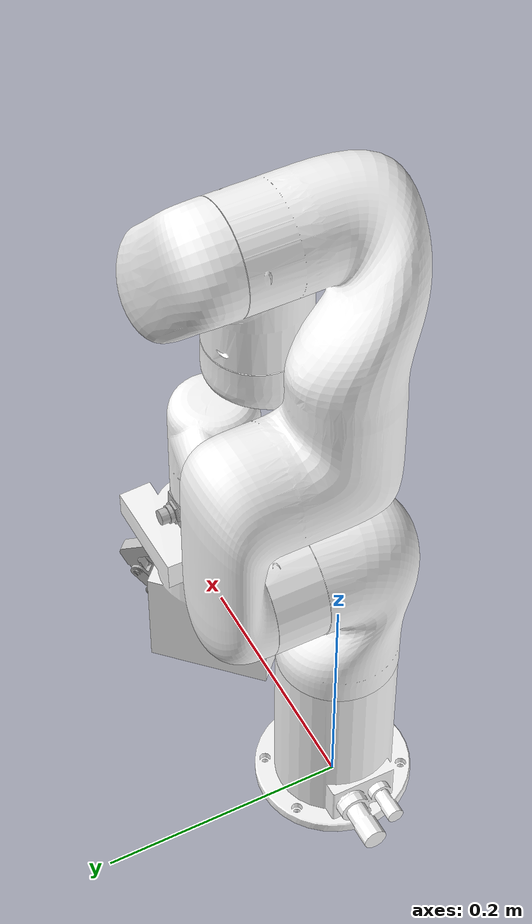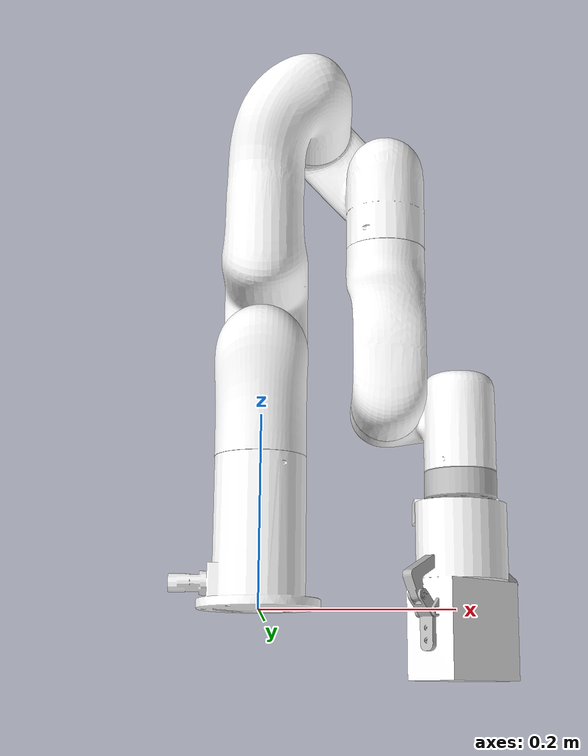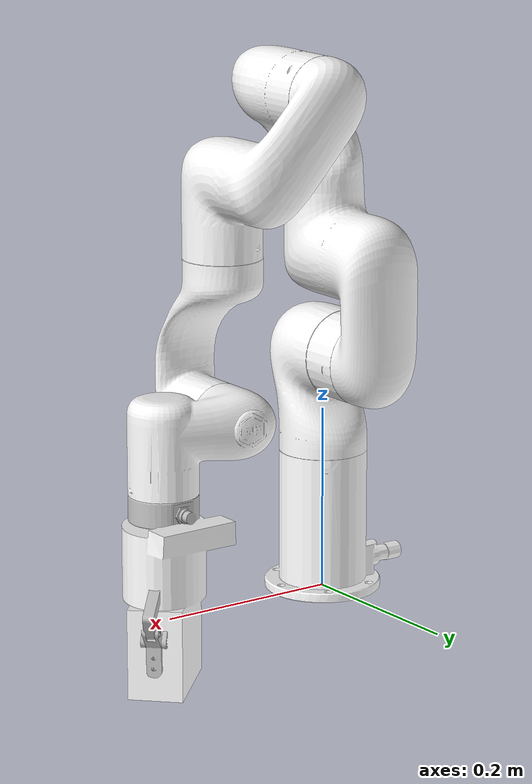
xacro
<?xml version='1.0' encoding='utf-8'?>
<robot xmlns:xacro="http://ros.org/wiki/xacro" name="xarm6">
  <xacro:arg name="prefix" default=""/>
  <xacro:arg name="ros_namespace" default="xarm"/>
  <xacro:arg name="limited" default="false"/>
  <xacro:arg name="effort_control" default="false"/>
  <xacro:arg name="velocity_control" default="false"/>
  <!-- To add realsense d435i and gripper, set 'add_realsense_d435i' = true -->
  <xacro:arg name="add_realsense_d435i" default="false"/>
  <xacro:arg name="use_gazebo_camera" default="false"/>
  <xacro:arg name="xyz" default="0 0 0"/>
  <xacro:arg name="rpy" default="0 0 0"/>

  <!-- load xarm6 robot -->
  <xacro:include filename="$(find xarm_description)/urdf/xarm6_robot_macro.xacro" />

  <!-- Attach gripper -->
  <xacro:include filename="$(find xarm_gripper)/urdf/xarm_gripper_model.xacro" />

  <xacro:xarm6_robot prefix="$(arg prefix)" namespace="$(arg ros_namespace)" limited="$(arg limited)" effort_control="$(arg effort_control)" velocity_control="$(arg velocity_control)" rs_d435i="$(arg add_realsense_d435i)" xyz="$(arg xyz)" rpy="$(arg rpy)" />

  <xacro:if value="$(arg add_realsense_d435i)">
    <xacro:load_gripper attach_to="$(arg prefix)link_eef" xyz="0 0 0.003" effort_control="$(arg effort_control)" velocity_control="$(arg velocity_control)" robot_dof="6" />
  </xacro:if>
  <xacro:unless value="$(arg add_realsense_d435i)">
    <xacro:load_gripper attach_to="$(arg prefix)link_eef" effort_control="$(arg effort_control)" velocity_control="$(arg velocity_control)" robot_dof="6" />
  </xacro:unless>

  <xacro:if value="$(arg use_gazebo_camera)">
    <xacro:include filename="$(find xarm_description)/urdf/camera.gazebo.xacro" />
    <xacro:camera_gazebo prefix="$(arg prefix)" />
  </xacro:if>
</robot>

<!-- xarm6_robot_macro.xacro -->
<robot xmlns:xacro="http://ros.org/wiki/xacro" name="xarm6" >
  <xacro:macro name="xarm6_robot" params="prefix:='' namespace:='xarm' limited:='false' effort_control:='false'
    velocity_control:='false' attach_to:='world' xyz:='0 0 0' rpy:='0 0 0' load_gazebo_plugin:='true' rs_d435i:='false'
    add_other_geometry:='false'
    geometry_type:='box' geometry_mass:='0.1'
    geometry_radius:='0.1' geometry_height:='0.1'
    geometry_length:='0.1' geometry_width:='0.1'
    geometry_mesh_filename:=''
    geometry_mesh_origin_xyz:='0 0 0'
    geometry_mesh_origin_rpy:='0 0 0'
    geometry_mesh_tcp_xyz:='0 0 0'
    geometry_mesh_tcp_rpy:='0 0 0' ">

    <!-- include xarm6 relative macros: -->
    <xacro:include filename="$(find xarm_description)/urdf/xarm6.urdf.xacro" />
    <xacro:include filename="$(find xarm_description)/urdf/xarm6.transmission.xacro" />
    <xacro:include filename="$(find xarm_description)/urdf/xarm6.gazebo.xacro" />

    <!-- gazebo_plugin -->
    <xacro:if value="${load_gazebo_plugin}">
    <xacro:include filename="$(find xarm_description)/urdf/common.gazebo.xacro" />
    <xacro:gazebo_ros_control_plugin namespace="${namespace}"/>
    </xacro:if>

    <!-- add one world link if no 'attach_to' specified  -->
    <xacro:if value="${attach_to == 'world'}">
      <link name="world" />
    </xacro:if>

    <joint name="${prefix}world_joint" type="fixed">
      <parent link="${attach_to}" />
      <child link = "${prefix}link_base" />
      <origin xyz="${xyz}" rpy="${rpy}" />
    </joint>

<!-- joint4 limit changed from -180-180 to 0-360 -->
<!-- joint5 limit change from -180-180 to -360-360 -->
    <xacro:if value="${limited}">
      <xacro:xarm6_urdf prefix="${prefix}"
        joint1_lower_limit="${-2.0*pi}" joint1_upper_limit="${2.0*pi}"
        joint2_lower_limit="${-2.059}" joint2_upper_limit="${2.0944}"
        joint3_lower_limit="${-3.927}" joint3_upper_limit="${0.19198}"
        joint4_lower_limit="${-2.0*pi}" joint4_upper_limit="${2.0*pi}"
        joint5_lower_limit="${-1.69297}" joint5_upper_limit="${pi*0.99}"
        joint6_lower_limit="${-2.0*pi}" joint6_upper_limit="${2.0*pi}"
        rs_d435i="${rs_d435i}"/>
    </xacro:if>
    <xacro:unless value="${limited}">
      <xacro:xarm6_urdf prefix="${prefix}" rs_d435i="${rs_d435i}"/>
    </xacro:unless>

    <xacro:xarm6_transmission prefix="${prefix}" hard_interface="$(eval 'EffortJointInterface' if ${effort_control} else 'VelocityJointInterface' if ${velocity_control} else 'PositionJointInterface')" />

    <xacro:xarm6_gazebo prefix="${prefix}" />

    <xacro:if value="${add_other_geometry}">
      <xacro:include filename="$(find xarm_description)/urdf/other_geometry.urdf.xacro" />
      <xacro:other_geometry prefix="${prefix}" attach_to="${prefix}link_eef"
        geometry_type="${geometry_type}" geometry_mass="${geometry_mass}"
        geometry_height="${geometry_height}" geometry_radius="${geometry_radius}"
        geometry_length="${geometry_length}" geometry_width="${geometry_width}"
        geometry_mesh_filename="${geometry_mesh_filename}"
        geometry_mesh_origin_xyz="${geometry_mesh_origin_xyz}" geometry_mesh_origin_rpy="${geometry_mesh_origin_rpy}"
        geometry_mesh_tcp_xyz="${geometry_mesh_tcp_xyz}" geometry_mesh_tcp_rpy="${geometry_mesh_tcp_rpy}"
      />
    </xacro:if>

  </xacro:macro>

</robot>

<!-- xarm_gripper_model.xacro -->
<robot xmlns:xacro="http://ros.org/wiki/xacro"
       name="xarm_gripper">
    <!-- common stuff -->
    <xacro:include filename="$(find xarm_description)/urdf/common.gazebo.xacro"/>

    <!-- xarm_gripper -->
    <xacro:include filename="$(find xarm_gripper)/urdf/xarm_gripper.urdf.xacro"/>
    <xacro:include filename="$(find xarm_gripper)/urdf/xarm_gripper.transmission.xacro"/>
    <xacro:include filename="$(find xarm_gripper)/urdf/xarm_gripper.gazebo.xacro"/>

    <xacro:macro name="load_gripper"
                 params="prefix:='' attach_to:='' ns:='xarm' effort_control:='false'
                 velocity_control:='false' robot_dof:=7 gripper_meshes_path:='' long_finger:='false'
                 upside_down:='false' tool_changer:='false'">
        <!-- gazebo plugin -->

        <xacro:xarm_gripper_urdf prefix="${prefix}" attach_to="${attach_to}" upside_down="${upside_down}"
                                 long_finger="${long_finger}" gripper_meshes_path="${gripper_meshes_path}"
                                 tool_changer="${tool_changer}"/>

        <xacro:xarm_gripper_transmission prefix="${prefix}"
                                         hard_interface="$(eval 'EffortJointInterface' if ${effort_control} else 'VelocityJointInterface' if ${velocity_control} else 'PositionJointInterface')"/>

        <xacro:xarm_gripper_gazebo prefix="${prefix}"/>
        <xacro:xarm_gazebo_grasp_fix prefix="${prefix}" palm_link="${prefix}link${robot_dof}"/>

        <!-- mimic_joint_plugin has to be installed: -->
        <xacro:mimic_joint_plugin_gazebo name_prefix="${prefix}left_finger_joint"
                                         following_joint="${prefix}drive_joint" mimic_joint="${prefix}left_finger_joint"
                                         has_pid="false" multiplier="1.0" max_effort="10.0"/>

        <xacro:mimic_joint_plugin_gazebo name_prefix="${prefix}left_inner_knuckle_joint"
                                         following_joint="${prefix}drive_joint"
                                         mimic_joint="${prefix}left_inner_knuckle_joint"
                                         has_pid="false" multiplier="1.0" max_effort="10.0"/>

        <xacro:mimic_joint_plugin_gazebo name_prefix="${prefix}right_outer_knuckle_joint"
                                         following_joint="${prefix}drive_joint"
                                         mimic_joint="${prefix}right_outer_knuckle_joint"
                                         has_pid="false" multiplier="1.0" max_effort="10.0"/>

        <xacro:mimic_joint_plugin_gazebo name_prefix="${prefix}right_finger_joint"
                                         following_joint="${prefix}drive_joint"
                                         mimic_joint="${prefix}right_finger_joint"
                                         has_pid="false" multiplier="1.0" max_effort="10.0"/>

        <xacro:mimic_joint_plugin_gazebo name_prefix="${prefix}right_inner_knuckle_joint"
                                         following_joint="${prefix}drive_joint"
                                         mimic_joint="${prefix}right_inner_knuckle_joint"
                                         has_pid="false" multiplier="1.0" max_effort="10.0"/>

    </xacro:macro>
</robot>

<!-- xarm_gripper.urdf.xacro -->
<robot xmlns:xacro="http://ros.org/wiki/xacro" name="xarm_gripper">
    <xacro:macro name="xarm_gripper_urdf"
                 params="prefix:='' attach_to:='' gripper_meshes_path:='' long_finger:='false' upside_down:='false'
                        tool_changer:='false'">
        <xacro:if value="${long_finger}">
            <xacro:property name="gripper_meshes_path"
                            value="xarm_gripper/meshes/xarm_long_finger_assembled"/>
            <xacro:property name="tcp_offset_z" value="0.340"/>
        </xacro:if>
        <xacro:unless value="${long_finger}">
            <xacro:property name="tcp_offset_z" value="0.172"/>
        </xacro:unless>
        <xacro:if value="${gripper_meshes_path == ''}">
            <xacro:property name="gripper_meshes_path" value="xarm_gripper/meshes"/>
        </xacro:if>
<!--            &lt;!&ndash; 0.7855? yaw similar to real upside-down robot &ndash;&gt;-->
        <xacro:if value="${tool_changer}">
            <xacro:property name="drive_joint_z" value="0.077"/>
            <xacro:property name="base_link_mesh_path"
                            value="xarm_gripper/meshes/xarm_long_finger_tool_change_edited"/>
        </xacro:if>
        <xacro:unless value="${tool_changer}">
            <xacro:property name="drive_joint_z" value="0"/>
            <xacro:property name="base_link_mesh_path" value="${gripper_meshes_path}"/>
        </xacro:unless>
        <xacro:unless value="${attach_to == ''}">
            <joint name="${prefix}gripper_fix" type="fixed">
                <parent link="${attach_to}"/>
                <child link="${prefix}xarm_gripper_base_link"/>
                <origin xyz="0 0 0" rpy="0 0 0"/>
            </joint>
        </xacro:unless>
        <link
                name="${prefix}xarm_gripper_base_link">
            <inertial>
                <origin
                        xyz="-0.00065489 -0.0018497 0.048028"
                        rpy="0 0 0"/>
                <mass
                        value="0.54156"/>
                <inertia
                        ixx="0.00047106"
                        ixy="3.9292E-07"
                        ixz="2.6537E-06"
                        iyy="0.00033072"
                        iyz="-1.0975E-05"
                        izz="0.00025642"/>
            </inertial>
            <visual>
                <origin
                        xyz="0 0 0"
                        rpy="0 0 0"/>
                <geometry>
                    <mesh
                            filename="package://${base_link_mesh_path}/base_link.STL"/>
                </geometry>
                <material name="White">
                    <color rgba="1.0 1.0 1.0 1.0"/>
                </material>
            </visual>
            <collision>
                <origin
                        xyz="0 0 0"
                        rpy="0 0 0"/>
                <geometry>
                    <mesh
                            filename="package://${base_link_mesh_path}/base_link_collision.STL"/>
                </geometry>
            </collision>
        </link>
        <!-- add condition for camera if needed -->
        <xacro:if value="${True}">
<!--                    name="my_camera_joint"-->
<!--                    type="fixed">-->
<!--                        xyz="-0.0463 -0.0467 0"-->
<!--                &lt;!&ndash; xyz="-0.0463 -0.0467 0"&ndash;&gt;-->
<!--                &lt;!&ndash;camera image from with reversed y&ndash;&gt;-->
<!--                &lt;!&ndash; camera image for test/calibration with real-sense ros package&ndash;&gt;-->
        </xacro:if>
        <link
                name="${prefix}left_outer_knuckle">
            <inertial>
                <origin
                        xyz="2.9948E-14 0.021559 0.015181"
                        rpy="0 0 0"/>
                <mass
                        value="0.033618"/>
                <inertia
                        ixx="1.9111E-05"
                        ixy="-1.8803E-17"
                        ixz="-1.1002E-17"
                        iyy="6.6256E-06"
                        iyz="-7.3008E-06"
                        izz="1.3185E-05"/>
            </inertial>
            <visual>
                <origin
                        xyz="0 0 0"
                        rpy="0 0 0"/>
                <geometry>
                    <mesh
                            filename="package://${gripper_meshes_path}/left_outer_knuckle.STL"/>
                </geometry>
                <material name="Silver">
                    <color rgba="0.753 0.753 0.753 1.0"/>
                </material>
            </visual>
            <collision>
                <origin
                        xyz="0 0 0"
                        rpy="0 0 0"/>
                <geometry>
                    <mesh
                            filename="package://${gripper_meshes_path}/left_outer_knuckle.STL"/>
                </geometry>
            </collision>
        </link>
        <joint
                name="${prefix}drive_joint"
                type="revolute">
            <origin
                    xyz="0 0.035 ${drive_joint_z + 0.059098}"
                    rpy="0 0 0"/>
            <parent
                    link="${prefix}xarm_gripper_base_link"/>
            <child
                    link="${prefix}left_outer_knuckle"/>
            <axis
                    xyz="1 0 0"/>
            <limit
                    lower="0"
                    upper="0.85"
                    effort="50"
                    velocity="2"/>
        </joint>
        <link
                name="${prefix}left_finger">
            <inertial>
                <origin
                        xyz="-2.4536E-14 -0.016413 0.029258"
                        rpy="0 0 0"/>
                <mass
                        value="0.048304"/>
                <inertia
                        ixx="1.7493E-05"
                        ixy="-4.2156E-19"
                        ixz="6.9164E-18"
                        iyy="1.7225E-05"
                        iyz="4.6433E-06"
                        izz="5.1466E-06"/>
            </inertial>
            <visual>
                <origin
                        xyz="0 0 0"
                        rpy="0 0 0"/>
                <geometry>
                    <mesh
                            filename="package://${gripper_meshes_path}/left_finger.STL"/>
                </geometry>
                <material name="Silver">
                    <color rgba="0.753 0.753 0.753 1.0"/>
                </material>
            </visual>
            <collision>
                <origin
                        xyz="0 0 0"
                        rpy="0 0 0"/>
                <geometry>
                    <mesh
                            filename="package://${gripper_meshes_path}/left_finger.STL"/>
                </geometry>
            </collision>
        </link>
        <joint
                name="${prefix}left_finger_joint"
                type="revolute">
            <origin
                    xyz="0 0.035465 0.042039"
                    rpy="0 0 0"/>
            <parent
                    link="${prefix}left_outer_knuckle"/>
            <child
                    link="${prefix}left_finger"/>
            <axis
                    xyz="-1 0 0"/>
            <limit
                    lower="0"
                    upper="0.85"
                    effort="50"
                    velocity="2"/>
            <mimic joint="${prefix}drive_joint" multiplier="1" offset="0"/>
        </joint>
        <link
                name="${prefix}left_inner_knuckle">
            <inertial>
                <origin
                        xyz="1.86600784687907E-06 0.0220467847633621 0.0261334672830885"
                        rpy="0 0 0"/>
                <mass
                        value="0.0230125781256706"/>
                <inertia
                        ixx="6.09490024271906E-06"
                        ixy="6.06651326160071E-11"
                        ixz="7.19102670500635E-11"
                        iyy="6.01955084375188E-06"
                        iyz="-2.75316812991721E-06"
                        izz="5.07862004479903E-06"/>
            </inertial>
            <visual>
                <origin
                        xyz="0 0 0"
                        rpy="0 0 0"/>
                <geometry>
                    <mesh
                            filename="package://${gripper_meshes_path}/left_inner_knuckle.STL"/>
                </geometry>
                <material name="Silver">
                    <color rgba="0.753 0.753 0.753 1.0"/>
                </material>
            </visual>
            <collision>
                <origin
                        xyz="0 0 0"
                        rpy="0 0 0"/>
                <geometry>
                    <mesh
                            filename="package://${gripper_meshes_path}/left_inner_knuckle.STL"/>
                </geometry>
            </collision>
        </link>
        <joint
                name="${prefix}left_inner_knuckle_joint"
                type="revolute">
            <origin
                    xyz="0 0.02 ${drive_joint_z + 0.074098}"
                    rpy="0 0 0"/>
            <parent
                    link="${prefix}xarm_gripper_base_link"/>
            <child
                    link="${prefix}left_inner_knuckle"/>
            <axis
                    xyz="1 0 0"/>
            <limit
                    lower="0"
                    upper="0.85"
                    effort="50"
                    velocity="2"/>
            <mimic joint="${prefix}drive_joint" multiplier="1" offset="0"/>
        </joint>
        <link
                name="${prefix}right_outer_knuckle">
            <inertial>
                <origin
                        xyz="-3.1669E-14 -0.021559 0.015181"
                        rpy="0 0 0"/>
                <mass
                        value="0.033618"/>
                <inertia
                        ixx="1.9111E-05"
                        ixy="-1.8789E-17"
                        ixz="1.0986E-17"
                        iyy="6.6256E-06"
                        iyz="7.3008E-06"
                        izz="1.3185E-05"/>
            </inertial>
            <visual>
                <origin
                        xyz="0 0 0"
                        rpy="0 0 0"/>
                <geometry>
                    <mesh
                            filename="package://${gripper_meshes_path}/right_outer_knuckle.STL"/>
                </geometry>
                <material name="Silver">
                    <color rgba="0.753 0.753 0.753 1.0"/>
                </material>
            </visual>
            <collision>
                <origin
                        xyz="0 0 0"
                        rpy="0 0 0"/>
                <geometry>
                    <mesh
                            filename="package://${gripper_meshes_path}/right_outer_knuckle.STL"/>
                </geometry>
            </collision>
        </link>
        <joint
                name="${prefix}right_outer_knuckle_joint"
                type="revolute">
            <origin
                    xyz="0 -0.035 ${drive_joint_z + 0.059098}"
                    rpy="0 0 0"/>
            <parent
                    link="${prefix}xarm_gripper_base_link"/>
            <child
                    link="${prefix}right_outer_knuckle"/>
            <axis
                    xyz="-1 0 0"/>
            <limit
                    lower="0"
                    upper="0.85"
                    effort="50"
                    velocity="2"/>
            <mimic joint="${prefix}drive_joint" multiplier="1" offset="0"/>
        </joint>
        <link
                name="${prefix}right_finger">
            <inertial>
                <origin
                        xyz="2.5618E-14 0.016413 0.029258"
                        rpy="0 0 0"/>
                <mass
                        value="0.048304"/>
                <inertia
                        ixx="1.7493E-05"
                        ixy="-5.0014E-19"
                        ixz="-7.5079E-18"
                        iyy="1.7225E-05"
                        iyz="-4.6435E-06"
                        izz="5.1466E-06"/>
            </inertial>
            <visual>
                <origin
                        xyz="0 0 0"
                        rpy="0 0 0"/>
                <geometry>
                    <mesh
                            filename="package://${gripper_meshes_path}/right_finger.STL"/>
                </geometry>
                <material name="Silver">
                    <color rgba="0.753 0.753 0.753 1.0"/>
                </material>
            </visual>
            <collision>
                <origin
                        xyz="0 0 0"
                        rpy="0 0 0"/>
                <geometry>
                    <mesh
                            filename="package://${gripper_meshes_path}/right_finger.STL"/>
                </geometry>
            </collision>
        </link>
        <joint
                name="${prefix}right_finger_joint"
                type="revolute">
            <origin
                    xyz="0 -0.035465 0.042039"
                    rpy="0 0 0"/>
            <parent
                    link="${prefix}right_outer_knuckle"/>
            <child
                    link="${prefix}right_finger"/>
            <axis
                    xyz="1 0 0"/>
            <limit
                    lower="0"
                    upper="0.85"
                    effort="50"
                    velocity="2"/>
            <mimic joint="${prefix}drive_joint" multiplier="1" offset="0"/>
        </joint>
        <link
                name="${prefix}right_inner_knuckle">
            <inertial>
                <origin
                        xyz="1.866E-06 -0.022047 0.026133"
                        rpy="0 0 0"/>
                <mass
                        value="0.023013"/>
                <inertia
                        ixx="6.0949E-06"
                        ixy="-6.0665E-11"
                        ixz="7.191E-11"
                        iyy="6.0197E-06"
                        iyz="2.7531E-06"
                        izz="5.0784E-06"/>
            </inertial>
            <visual>
                <origin
                        xyz="0 0 0"
                        rpy="0 0 0"/>
                <geometry>
                    <mesh
                            filename="package://${gripper_meshes_path}/right_inner_knuckle.STL"/>
                </geometry>
                <material name="Silver">
                    <color rgba="0.753 0.753 0.753 1.0"/>
                </material>
            </visual>
            <collision>
                <origin
                        xyz="0 0 0"
                        rpy="0 0 0"/>
                <geometry>
                    <mesh
                            filename="package://${gripper_meshes_path}/right_inner_knuckle.STL"/>
                </geometry>
            </collision>
        </link>
        <joint
                name="${prefix}right_inner_knuckle_joint"
                type="revolute">
            <origin
                    xyz="0 -0.02 ${drive_joint_z + 0.074098}"
                    rpy="0 0 0"/>
            <parent
                    link="${prefix}xarm_gripper_base_link"/>
            <child
                    link="${prefix}right_inner_knuckle"/>
            <axis
                    xyz="-1 0 0"/>
            <limit
                    lower="0"
                    upper="0.85"
                    effort="50"
                    velocity="2"/>
            <mimic joint="${prefix}drive_joint" multiplier="1" offset="0"/>
        </joint>

        <link name="${prefix}link_tcp"/>

        <joint
                name="${prefix}joint_tcp"
                type="fixed">
            <origin
                    xyz="0 0 ${tcp_offset_z + drive_joint_z}"
                    rpy="0 0 0"/>
            <parent
                    link="${prefix}xarm_gripper_base_link"/>
            <child
                    link="${prefix}link_tcp"/>
        </joint>

    </xacro:macro>

</robot>

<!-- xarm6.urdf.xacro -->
<robot xmlns:xacro="http://ros.org/wiki/xacro">

  <xacro:macro name="xarm6_urdf" params="prefix
    joint1_lower_limit:=${-2.0*pi}  joint1_upper_limit:=${2.0*pi}
    joint2_lower_limit:=${-2.059}  joint2_upper_limit:=${2.0944}
    joint3_lower_limit:=${-3.927}  joint3_upper_limit:=${0.19198}
    joint4_lower_limit:=${-2.0*pi}  joint4_upper_limit:=${2.0*pi}
    joint5_lower_limit:=${-1.69297}  joint5_upper_limit:=${pi}
    joint6_lower_limit:=${-2.0*pi}  joint6_upper_limit:=${2.0*pi}
    rs_d435i:=false">

    <material name="${prefix}Black">
      <color rgba="0.0 0.0 0.0 1.0"/>
    </material>

    <material name="${prefix}Red">
      <color rgba="0.8 0.0 0.0 1.0"/>
    </material>

    <material name="${prefix}White">
      <color rgba="1.0 1.0 1.0 1.0"/>
    </material>

    <material name="${prefix}Silver">
      <color rgba="0.753 0.753 0.753 1.0"/>
    </material>

    <link name="${prefix}link_base">
      <visual>
        <geometry>
          <mesh filename="package://xarm_description/meshes/xarm6/visual/base.stl"/>
        </geometry>
        <origin xyz="0 0 0" rpy="0 0 0"/>
        <material name="${prefix}White" />
      </visual>
      <collision>
        <geometry>
          <mesh filename="package://xarm_description/meshes/xarm6/visual/base.stl"/>
        </geometry>
        <origin xyz="0 0 0" rpy="0 0 0"/>
      </collision>
      <inertial>
      <origin xyz="0.0 0.0 0.09103" rpy="0 0 0" />
      <mass value="2.7" />
      <inertia
        ixx="0.00494875"
        ixy="-3.5E-06"
        ixz="1.25E-05"
        iyy="0.00494174"
        iyz="1.67E-06"
        izz="0.002219" />
      </inertial>
    </link>

    <link name="${prefix}link1">
      <visual>
        <geometry>
          <mesh filename="package://xarm_description/meshes/xarm6/visual/link1.stl"/>
        </geometry>
        <origin xyz="0 0 0" rpy="0 0 0"/>
        <material name="${prefix}White" />
      </visual>
      <collision>
        <geometry>
          <mesh filename="package://xarm_description/meshes/xarm6/visual/link1.stl"/>
        </geometry>
        <origin xyz="0 0 0" rpy="0 0 0"/>
      </collision>
      <inertial>
        <origin xyz="-0.002 0.02692 -0.01332" rpy="0 0 0"/>
        <mass value="2.16"/>
        <inertia
          ixx="0.00539427"
          ixy="1.095E-05"
          ixz="1.635E-06"
          iyy="0.0048979"
          iyz="0.000793"
          izz="0.00311573"/>
      </inertial>
    </link>

    <joint name="${prefix}joint1" type="revolute">
      <parent link="${prefix}link_base"/>
      <child  link="${prefix}link1"/>
      <origin xyz="0 0 0.267" rpy="0 0 0"/>
      <axis   xyz="0 0 1"/>
      <limit
        lower="${joint1_lower_limit}"
        upper="${joint1_upper_limit}"
        effort="50.0"
        velocity="3.14"/>
      <dynamics damping="1.0" friction="1.0"/>
    </joint>

    <link name="${prefix}link2">
      <visual>
        <geometry>
          <mesh filename="package://xarm_description/meshes/xarm6/visual/link2.stl"/>
        </geometry>
        <origin xyz="0 0 0" rpy="0 0 0"/>
        <material name="${prefix}White" />
      </visual>
      <collision>
        <geometry>
          <mesh filename="package://xarm_description/meshes/xarm6/visual/link2.stl"/>
        </geometry>
        <origin xyz="0 0 0" rpy="0 0 0"/>
      </collision>
      <inertial>
      <origin
        xyz="0.03531 -0.21398 0.03386"
        rpy="0 0 0" />
      <mass
        value="1.71" />
      <inertia
        ixx="0.0248674"
        ixy="-0.00430651"
        ixz="-0.00067797"
        iyy="0.00485548"
        iyz="0.00457245"
        izz="0.02387827" />
    </inertial>
    </link>

    <joint name="${prefix}joint2" type="revolute">
      <parent link="${prefix}link1"/>
      <child link="${prefix}link2"/>
      <origin xyz="0 0 0" rpy="-1.5708 0 0" />
      <axis xyz="0 0 1"/>
      <limit
        lower="${joint2_lower_limit}"
        upper="${joint2_upper_limit}"
        effort="50.0"
        velocity="3.14"/>
      <dynamics damping="1.0" friction="1.0"/>
    </joint>

    <link name="${prefix}link3">
      <visual>
        <geometry>
          <mesh filename="package://xarm_description/meshes/xarm6/visual/link3.stl"/>
        </geometry>
        <origin xyz="0 0 0" rpy="0 0 0"/>
        <material name="${prefix}White" />
      </visual>
      <collision>
        <geometry>
          <mesh filename="package://xarm_description/meshes/xarm6/visual/link3.stl"/>
        </geometry>
        <origin xyz="0 0 0" rpy="0 0 0"/>
      </collision>
      <inertial>
      <origin
        xyz="0.06781 0.10749 0.01457"
        rpy="0 0 0" />
      <mass
        value="1.384" />
      <inertia
        ixx="0.0053694"
        ixy="0.0014185"
        ixz="-0.00092094"
        iyy="0.0032423"
        iyz="-0.00169178"
        izz="0.00501731" />
    </inertial>
    </link>

    <joint name="${prefix}joint3" type="revolute">
      <parent link="${prefix}link2"/>
      <child link="${prefix}link3"/>
      <origin xyz="0.0535 -0.2845 0" rpy="0 0 0"/>
      <axis xyz="0 0 1"/>
      <limit
        lower="${joint3_lower_limit}"
        upper="${joint3_upper_limit}"
        effort="32.0"
        velocity="3.14"/>
      <dynamics damping="1.0" friction="1.0"/>
    </joint>

    <link name="${prefix}link4">
      <visual>
        <geometry>
          <mesh filename="package://xarm_description/meshes/xarm6/visual/link4.stl"/>
        </geometry>
        <origin xyz="0 0 0" rpy="0 0 0"/>
        <material name="${prefix}White" />
      </visual>
      <collision>
        <geometry>
          <mesh filename="package://xarm_description/meshes/xarm6/visual/link4.stl"/>
        </geometry>
        <origin xyz="0 0 0" rpy="0 0 0"/>
      </collision>
      <inertial>
        <origin xyz="-0.00021 0.02578 -0.02538" rpy="0 0 0"/>
        <mass value="1.115"/>
        <inertia
          ixx="0.00439263"
          ixy="5.028E-05"
          ixz="1.374E-05"
          iyy="0.0040077"
          iyz="0.00045338"
          izz="0.00110321"/>
      </inertial>
    </link>

    <joint name="${prefix}joint4" type="revolute">
      <parent link="${prefix}link3"/>
      <child link="${prefix}link4"/>
      <origin xyz="0.0775 0.3425 0" rpy="-1.5708 0 0"/>
      <axis xyz="0 0 1"/>
      <limit
        lower="${joint4_lower_limit}"
        upper="${joint4_upper_limit}"
        effort="32.0"
        velocity="3.14"/>
      <dynamics damping="1.0" friction="1.0"/>
    </joint>

    <link name="${prefix}link5">
      <visual>
        <geometry>
          <mesh filename="package://xarm_description/meshes/xarm6/visual/link5.stl"/>
        </geometry>
        <origin xyz="0 0 0" rpy="0 0 0"/>
        <material name="${prefix}White" />
      </visual>
      <collision>
        <geometry>
          <mesh filename="package://xarm_description/meshes/xarm6/visual/link5.stl"/>
        </geometry>
        <origin xyz="0 0 0" rpy="0 0 0"/>
      </collision>
      <inertial>
      <origin
        xyz="0.05428 0.01781 0.00543"
        rpy="0 0 0" />
      <mass
        value="1.275" />
      <inertia
        ixx="0.001202758"
        ixy="0.000492428"
        ixz="-0.00039147"
        iyy="0.0022876"
        iyz="-1.235E-04"
        izz="0.0026866" />
    </inertial>
    </link>

    <joint name="${prefix}joint5" type="revolute">
      <parent link="${prefix}link4"/>
      <child link="${prefix}link5"/>
      <origin xyz="0 0 0" rpy="1.5708 0 0"/>
      <axis xyz="0 0 1"/>
      <limit
        lower="${joint5_lower_limit}"
        upper="${joint5_upper_limit}"
        effort="32.0"
        velocity="3.14"/>
      <dynamics damping="1.0" friction="1.0"/>
    </joint>

    <link name="${prefix}link6">
      <visual>
        <geometry>
          <mesh filename="package://xarm_description/meshes/xarm6/visual/link6.stl"/>
        </geometry>
        <origin xyz="0 0 0" rpy="0 0 0"/>
        <material name="${prefix}Silver" />
      </visual>
      <collision>
        <geometry>
          <mesh filename="package://xarm_description/meshes/collision/end_tool.STL"/>
        </geometry>
        <origin xyz="0 0 0" rpy="0 0 0"/>
      </collision>
      <inertial>
      <origin
        xyz="0 0.00064 -0.00952"
        rpy="0 0 0" />
      <mass
        value="0.1096" />
      <inertia
        ixx="4.5293E-05"
        ixy="0"
        ixz="0"
        iyy="4.8111E-05"
        iyz="0"
        izz="7.9715E-05" />
    </inertial>
    </link>

    <joint name="${prefix}joint6" type="revolute">
      <parent link="${prefix}link5"/>
      <child link="${prefix}link6"/>
      <origin xyz="0.076 0.097 0" rpy="-1.5708 0 0"/>
      <axis xyz="0 0 1"/>
      <limit
        lower="${joint6_lower_limit}"
        upper="${joint6_upper_limit}"
        effort="20.0"
        velocity="3.14"/>
      <dynamics damping="1.0" friction="1.0"/>
    </joint>

  <xacro:if value="${rs_d435i}">
    <link name="${prefix}link_eef">
      <visual>
        <origin
          xyz="0 0 0"
          rpy="0 0 0" />
        <geometry>
          <mesh
            filename="package://d435i_xarm_setup/mesh/d435_with_cam_stand.STL" />
        </geometry>
        <material name="Silver" />
      </visual>
      <collision>
        <origin
          xyz="0 0 0"
          rpy="0 0 0" />
        <geometry>
          <mesh
            filename="package://d435i_xarm_setup/mesh/d435_with_cam_stand_collision.STL" />
        </geometry>
      </collision>
    </link>
  </xacro:if>

  <xacro:unless value="${rs_d435i}">
    <link name="${prefix}link_eef"/>
  </xacro:unless>

  <joint
    name="${prefix}joint_eef"
    type="fixed">
    <origin
      xyz="0 0 0"
      rpy="0 0 0.7855" />
    <parent
      link="${prefix}link6" />
    <child
      link="${prefix}link_eef" />
  </joint>

  </xacro:macro>
</robot>
